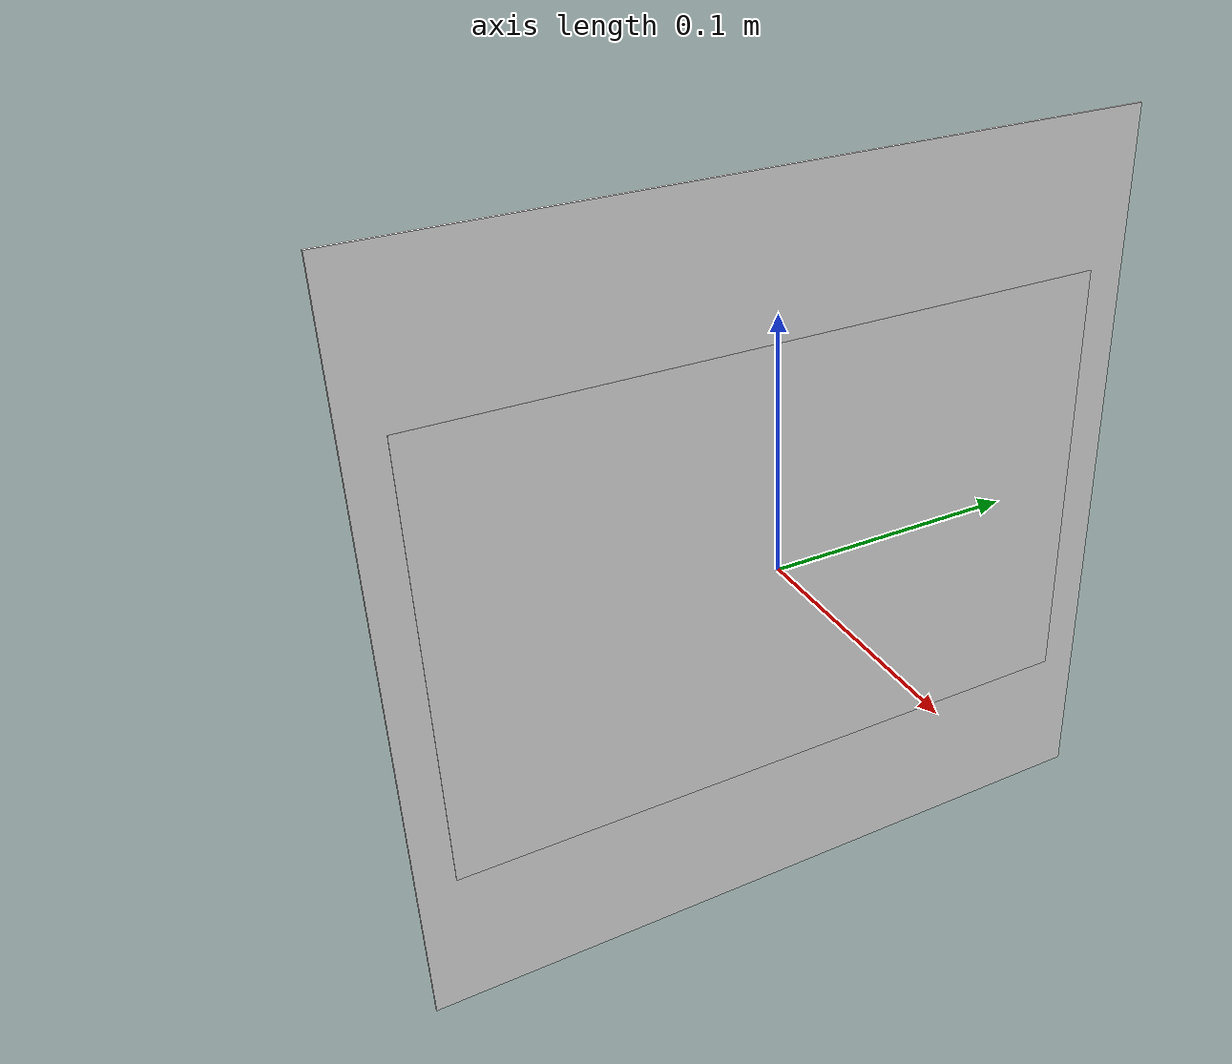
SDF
<?xml  version="1.0" ?>
<sdf version="1.5">

    <model name='chess'>
        <pose>0 0 0 0 0 0</pose>
        <static>true</static>
        <link name='link'>
            <visual name='box_visual'>
                <cast_shadows>0</cast_shadows>
                    <geometry>
                        <box>
                            <size>0.001 0.3 0.3</size>
                        </box>
                    </geometry>
                <material>
                    <ambient>1 1 1 1</ambient>
                    <diffuse>1 1 1 1</diffuse>
                    <specular>1 1 1 1</specular>
                    <emissive>0.6 0.6 0.6 1</emissive>
                </material>
            </visual>

            <visual name='chess_v'>
                <cast_shadows>0</cast_shadows>
                <pose>0.00065 0.0 0.0 1.5708 0.0 1.5708</pose>
                <geometry>
                    <plane>
                        <normal>0 0 1</normal>
                        <size>0.27 0.18</size>
                    </plane>
                </geometry>
                <material>
                    <pbr>
                        <metal>
                            <albedo_map>model://chess/materials/textures/chess.png</albedo_map>
                            <metalness>0.01</metalness>
                            <roughness>0.99</roughness>
                        </metal>
                    </pbr>
                    <ambient>1 1 1 1</ambient>
                    <diffuse>1 1 1 1</diffuse>
                    <specular>1 1 1 1</specular>
                    <shininess> 1 </shininess>
                    <emissive>0.0 0.0 0.0 0.1</emissive>
                </material>
            </visual>

        </link>
    </model>
</sdf>
